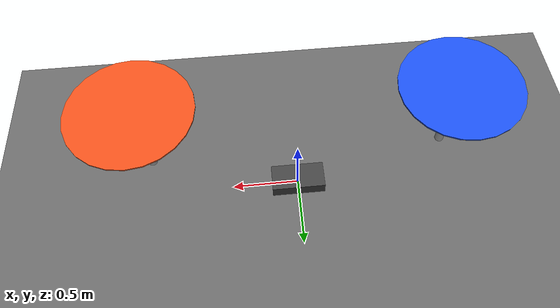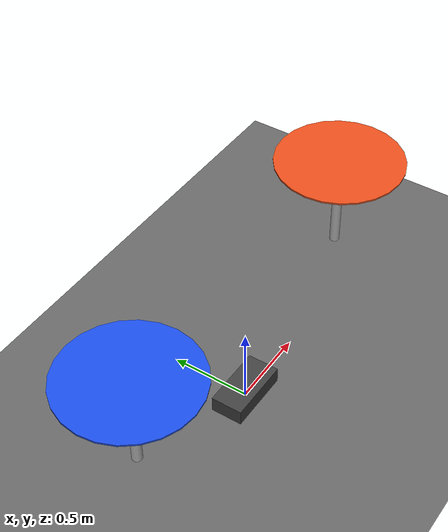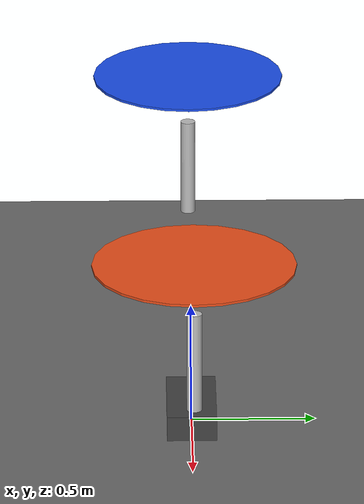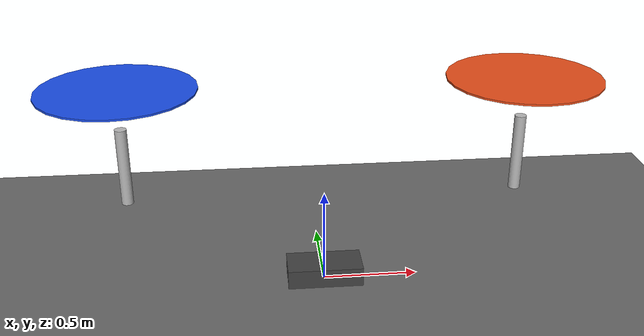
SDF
<?xml version="1.0"?>
<sdf version='1.10'>
  <world name='dual_chinook_world'>
    <gravity>0 0 -9.80665</gravity>
    <magnetic_field>6e-06 2.3e-05 -4.2e-05</magnetic_field>
    <atmosphere type='adiabatic' />
    <wind />
    <physics name='default_physics' type='gz-physics6'>
      <max_step_size>0.002</max_step_size>
      <real_time_factor>1.0</real_time_factor>
      <real_time_update_rate>500</real_time_update_rate>
    </physics>

    <model name='ground_plane'>
      <static>true</static>
      <link name='ground_link'>
        <collision name='ground_collision'>
          <geometry>
            <plane>
              <normal>0 0 1</normal>
              <size>200 200</size>
            </plane>
          </geometry>
          <surface>
            <friction>
              <ode>
                <mu>1.0</mu>
                <mu2>1.0</mu2>
              </ode>
            </friction>
          </surface>
        </collision>
        <visual name='ground_visual'>
          <geometry>
            <plane>
              <normal>0 0 1</normal>
              <size>200 200</size>
            </plane>
          </geometry>
          <material>
            <ambient>0.3 0.3 0.3 1</ambient>
            <diffuse>0.4 0.4 0.4 1</diffuse>
          </material>
        </visual>
      </link>
    </model>

    <light name='sun' type='directional'>
      <pose>0 0 10 0 0 0</pose>
      <diffuse>1 1 1 1</diffuse>
      <specular>0.1 0.1 0.1 1</specular>
      <attenuation>
        <range>1000</range>
        <linear>0.01</linear>
        <constant>0.8</constant>
        <quadratic>0.001</quadratic>
      </attenuation>
      <direction>-0.5 0.5 -1</direction>
      <cast_shadows>true</cast_shadows>
    </light>

    <model name='dual_chinook'>
      <pose>0 0 0.35 0 0 0</pose>
      <static>false</static>

      <link name='base_link'>
        <pose>0 0 0 0 0 0</pose>
        <inertial>
          <pose>0 0 0 0 0 0</pose>
          <mass>8.0</mass>
          <inertia>
            <ixx>1.6</ixx>
            <ixy>0</ixy>
            <ixz>0</ixz>
            <iyy>2.7333</iyy>
            <iyz>0</iyz>
            <izz>2.1333</izz>
          </inertia>
        </inertial>
        <collision name='base_collision'>
          <pose>0 0 -0.35 0 0 0</pose>
          <geometry>
            <box>
              <size>0.4 0.2 0.2</size>
            </box>
          </geometry>
          <surface>
            <contact>
              <ode>
                <kp>100000</kp>
                <kd>1</kd>
              </ode>
            </contact>
          </surface>
        </collision>
        <visual name='base_visual'>
          <pose>0 0 -0.35 0 0 0</pose>
          <geometry>
            <box>
              <size>0.4 0.2 0.2</size>
            </box>
          </geometry>
          <material>
            <ambient>0.23 0.23 0.23 1</ambient>
            <diffuse>0.25 0.25 0.25 1</diffuse>
          </material>
        </visual>
      </link>

      <link name='mast_forward'>
        <pose>-1.0 0.0 0.35 0 0 0</pose>
        <inertial>
          <mass>0.5</mass>
          <inertia>
            <ixx>0.01</ixx>
            <iyy>0.01</iyy>
            <izz>0.01</izz>
          </inertia>
        </inertial>
        <visual name='mast_forward_visual'>
          <geometry>
            <cylinder>
              <radius>0.03</radius>
              <length>0.4</length>
            </cylinder>
          </geometry>
        </visual>
      </link>

      <link name='mast_aft'>
        <pose>1.0 0.0 0.35 0 0 0</pose>
        <inertial>
          <mass>0.5</mass>
          <inertia>
            <ixx>0.01</ixx>
            <iyy>0.01</iyy>
            <izz>0.01</izz>
          </inertia>
        </inertial>
        <visual name='mast_aft_visual'>
          <geometry>
            <cylinder>
              <radius>0.03</radius>
              <length>0.4</length>
            </cylinder>
          </geometry>
        </visual>
      </link>

      <link name='rotor_0'>
        <pose>-1.0 0.0 0.75 0 0 0</pose>
        <inertial>
          <mass>0.08</mass>
          <inertia>
            <ixx>9.75e-05</ixx>
            <iyy>0.001</iyy>
            <izz>0.001</izz>
          </inertia>
        </inertial>
        <collision name='rotor_0_collision'>
          <geometry>
            <cylinder>
              <radius>0.39</radius>
              <length>0.01</length>
            </cylinder>
          </geometry>
        </collision>
        <visual name='rotor_0_visual'>
          <geometry>
            <cylinder>
              <radius>0.39</radius>
              <length>0.01</length>
            </cylinder>
          </geometry>
          <material>
            <ambient>0.0 0.2 0.7 1</ambient>
            <diffuse>0.1 0.3 0.9 1</diffuse>
          </material>
        </visual>
      </link>

      <link name='rotor_1'>
        <pose>1.0 0.0 0.75 0 0 0</pose>
        <inertial>
          <mass>0.08</mass>
          <inertia>
            <ixx>9.75e-05</ixx>
            <iyy>0.001</iyy>
            <izz>0.001</izz>
          </inertia>
        </inertial>
        <collision name='rotor_1_collision'>
          <geometry>
            <cylinder>
              <radius>0.39</radius>
              <length>0.01</length>
            </cylinder>
          </geometry>
        </collision>
        <visual name='rotor_1_visual'>
          <geometry>
            <cylinder>
              <radius>0.39</radius>
              <length>0.01</length>
            </cylinder>
          </geometry>
          <material>
            <ambient>0.7 0.2 0.0 1</ambient>
            <diffuse>0.9 0.3 0.1 1</diffuse>
          </material>
        </visual>
      </link>

      <joint name='mast_forward_joint' type='fixed'>
        <parent>base_link</parent>
        <child>mast_forward</child>
      </joint>

      <joint name='mast_aft_joint' type='fixed'>
        <parent>base_link</parent>
        <child>mast_aft</child>
      </joint>

      <joint name='rotor_0_joint' type='revolute'>
        <parent>mast_forward</parent>
        <child>rotor_0</child>
        <axis>
          <xyz>0 0 1</xyz>
          <limit>
            <lower>-1e16</lower>
            <upper>1e16</upper>
          </limit>
          <dynamics>
            <damping>0</damping>
          </dynamics>
        </axis>
      </joint>

      <joint name='rotor_1_joint' type='revolute'>
        <parent>mast_aft</parent>
        <child>rotor_1</child>
        <axis>
          <xyz>0 0 1</xyz>
          <limit>
            <lower>-1e16</lower>
            <upper>1e16</upper>
          </limit>
          <dynamics>
            <damping>0</damping>
          </dynamics>
        </axis>
      </joint>

      <plugin filename="gz-sim-multicopter-motor-model-system"
        name="gz::sim::systems::MulticopterMotorModel">
        <jointName>rotor_0_joint</jointName>
        <linkName>rotor_0</linkName>
        <turningDirection>ccw</turningDirection>
        <timeConstantUp>0.15</timeConstantUp>
        <timeConstantDown>0.25</timeConstantDown>
        <maxRotVelocity>1600.0</maxRotVelocity>
        <motorConstant>6.4e-05</motorConstant>
        <momentConstant>0.02</momentConstant>
        <commandSubTopic>command/motor_speed</commandSubTopic>
        <motorNumber>0</motorNumber>
        <rotorDragCoefficient>8.0e-05</rotorDragCoefficient>
        <rollingMomentCoefficient>1.0e-06</rollingMomentCoefficient>
        <rotorVelocitySlowdownSim>1.0</rotorVelocitySlowdownSim>
        <motorType>velocity</motorType>
      </plugin>

      <plugin filename="gz-sim-multicopter-motor-model-system"
        name="gz::sim::systems::MulticopterMotorModel">
        <jointName>rotor_1_joint</jointName>
        <linkName>rotor_1</linkName>
        <turningDirection>cw</turningDirection>
        <timeConstantUp>0.15</timeConstantUp>
        <timeConstantDown>0.25</timeConstantDown>
        <maxRotVelocity>1600.0</maxRotVelocity>
        <motorConstant>6.4e-05</motorConstant>
        <momentConstant>0.02</momentConstant>
        <commandSubTopic>command/motor_speed</commandSubTopic>
        <motorNumber>1</motorNumber>
        <rotorDragCoefficient>8.0e-05</rotorDragCoefficient>
        <rollingMomentCoefficient>1.0e-06</rollingMomentCoefficient>
        <rotorVelocitySlowdownSim>1.0</rotorVelocitySlowdownSim>
        <motorType>velocity</motorType>
      </plugin>

      <plugin filename="gz-sim-imu-system" name="gz::sim::systems::Imu">
        <parent_link>base_link</parent_link>
        <topic>/world/dual_chinook_world/model/dual_chinook/imu</topic>
        <gravity_dir_x>0</gravity_dir_x>
        <gravity_dir_y>0</gravity_dir_y>
        <gravity_dir_z>-1</gravity_dir_z>
      </plugin>
    </model>
  </world>
</sdf>
